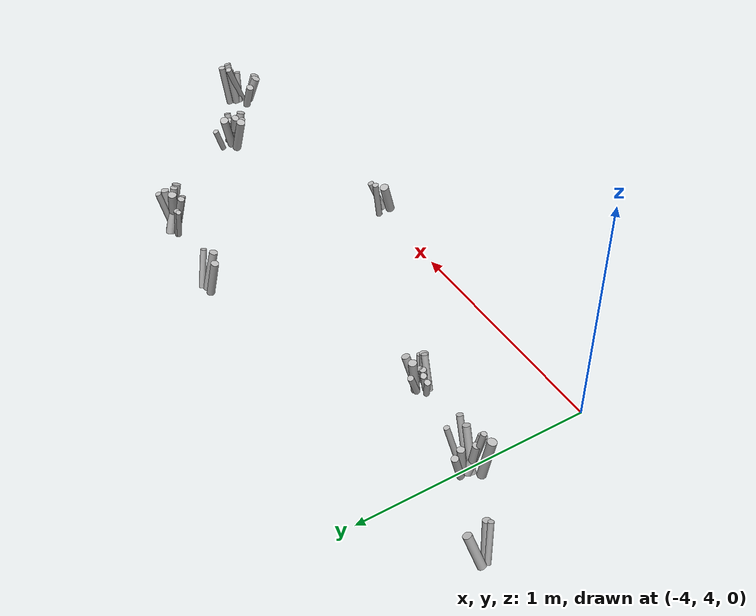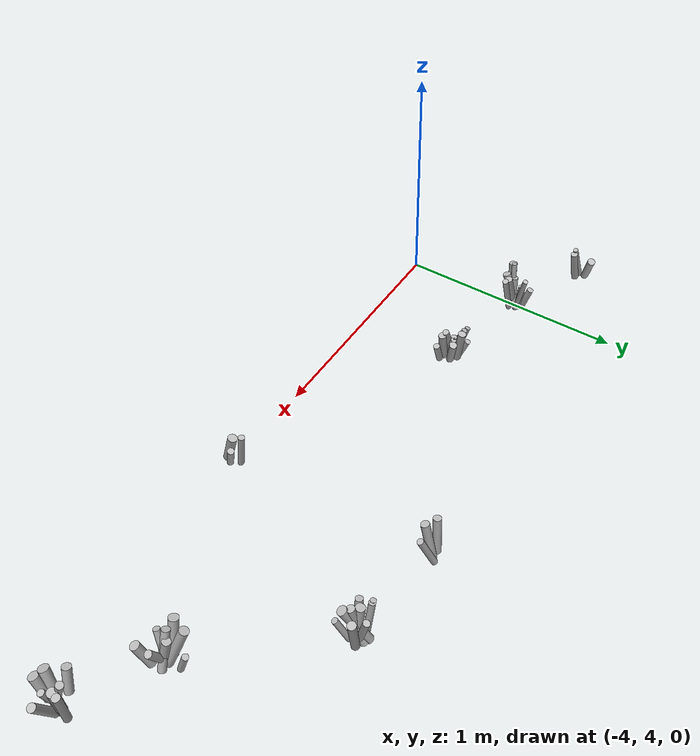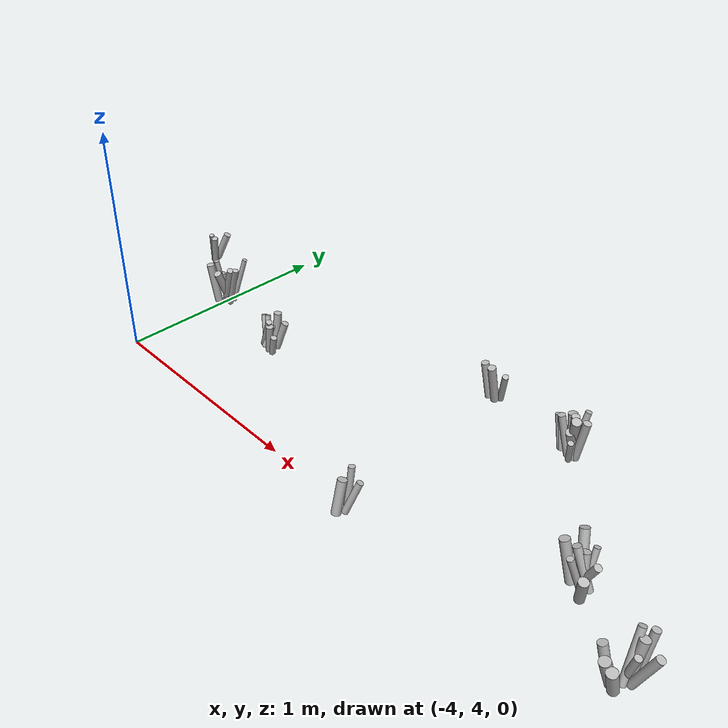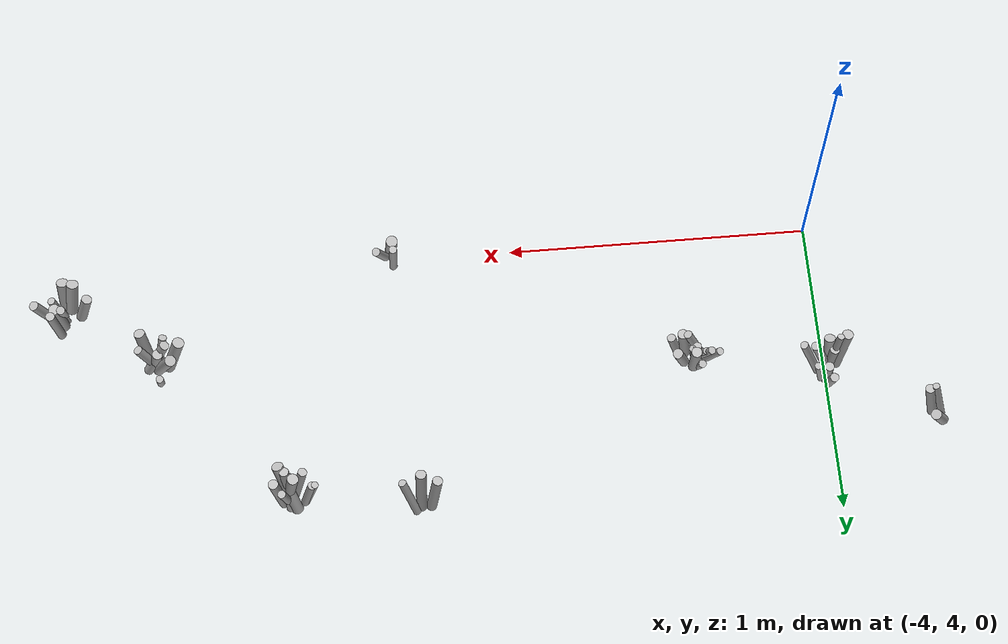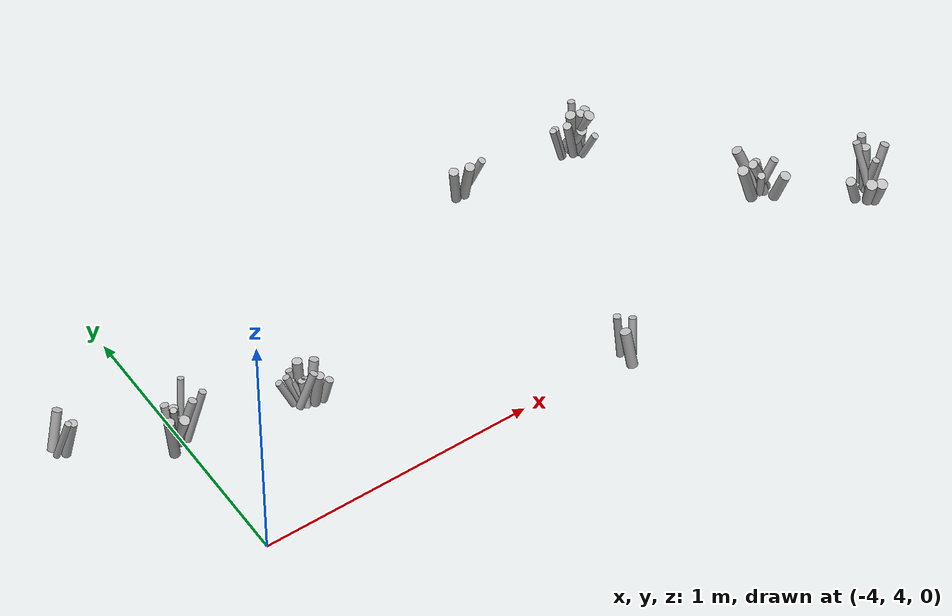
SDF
<sdf version="1.6">
 <world name="default">
  <model name="tussocks">
   <static>true</static>
   <link name="tuft23_0">
    <pose>-3.9995 4.5522 0.0627 0 0.1065 1.3027</pose>
    <visual name="tuft23_0_v">
     <geometry><cylinder><radius>0.0153</radius><length>0.1362</length></cylinder></geometry>
     <material>
      <script>
       <uri>model://bushfire/materials/scripts</uri>
       <uri>model://bushfire/materials/textures</uri>
       <name>Bushfire/Tussock</name>
      </script>
     </material>
    </visual>
   </link>
   <link name="tuft23_1">
    <pose>-3.9465 4.5115 0.1014 0 0.3116 6.2316</pose>
    <visual name="tuft23_1_v">
     <geometry><cylinder><radius>0.0130</radius><length>0.2203</length></cylinder></geometry>
     <material>
      <script>
       <uri>model://bushfire/materials/scripts</uri>
       <uri>model://bushfire/materials/textures</uri>
       <name>Bushfire/Foliage2</name>
      </script>
     </material>
    </visual>
   </link>
   <link name="tuft23_2">
    <pose>-4.0526 4.4830 0.0897 0 0.1355 3.7796</pose>
    <visual name="tuft23_2_v">
     <geometry><cylinder><radius>0.0182</radius><length>0.1951</length></cylinder></geometry>
     <material>
      <script>
       <uri>model://bushfire/materials/scripts</uri>
       <uri>model://bushfire/materials/textures</uri>
       <name>Bushfire/Foliage2</name>
      </script>
     </material>
    </visual>
   </link>
   <link name="tuft23_3">
    <pose>-4.0130 4.5127 0.0696 0 0.1254 3.7039</pose>
    <visual name="tuft23_3_v">
     <geometry><cylinder><radius>0.0158</radius><length>0.1514</length></cylinder></geometry>
     <material>
      <script>
       <uri>model://bushfire/materials/scripts</uri>
       <uri>model://bushfire/materials/textures</uri>
       <name>Bushfire/Tussock</name>
      </script>
     </material>
    </visual>
   </link>
   <link name="tuft23_4">
    <pose>-3.9857 4.5121 0.0930 0 0.3324 6.1719</pose>
    <visual name="tuft23_4_v">
     <geometry><cylinder><radius>0.0152</radius><length>0.2021</length></cylinder></geometry>
     <material>
      <script>
       <uri>model://bushfire/materials/scripts</uri>
       <uri>model://bushfire/materials/textures</uri>
       <name>Bushfire/Foliage2</name>
      </script>
     </material>
    </visual>
   </link>
   <link name="tuft23_5">
    <pose>-3.9671 4.5657 0.1061 0 0.2846 0.8724</pose>
    <visual name="tuft23_5_v">
     <geometry><cylinder><radius>0.0112</radius><length>0.2306</length></cylinder></geometry>
     <material>
      <script>
       <uri>model://bushfire/materials/scripts</uri>
       <uri>model://bushfire/materials/textures</uri>
       <name>Bushfire/Tussock</name>
      </script>
     </material>
    </visual>
   </link>
   <link name="tuft23_6">
    <pose>-4.0113 4.5776 0.0574 0 0.2684 1.5958</pose>
    <visual name="tuft23_6_v">
     <geometry><cylinder><radius>0.0144</radius><length>0.1248</length></cylinder></geometry>
     <material>
      <script>
       <uri>model://bushfire/materials/scripts</uri>
       <uri>model://bushfire/materials/textures</uri>
       <name>Bushfire/Foliage2</name>
      </script>
     </material>
    </visual>
   </link>
   <link name="tuft23_7">
    <pose>-4.0211 4.5047 0.1024 0 0.1667 3.8697</pose>
    <visual name="tuft23_7_v">
     <geometry><cylinder><radius>0.0116</radius><length>0.2226</length></cylinder></geometry>
     <material>
      <script>
       <uri>model://bushfire/materials/scripts</uri>
       <uri>model://bushfire/materials/textures</uri>
       <name>Bushfire/Tussock</name>
      </script>
     </material>
    </visual>
   </link>
   <link name="tuft23_8">
    <pose>-4.0091 4.5029 0.0803 0 0.3526 4.7714</pose>
    <visual name="tuft23_8_v">
     <geometry><cylinder><radius>0.0181</radius><length>0.1746</length></cylinder></geometry>
     <material>
      <script>
       <uri>model://bushfire/materials/scripts</uri>
       <uri>model://bushfire/materials/textures</uri>
       <name>Bushfire/Tussock</name>
      </script>
     </material>
    </visual>
   </link>
   <link name="tuft34_0">
    <pose>-1.8084 4.3270 0.0842 0 0.4013 3.2675</pose>
    <visual name="tuft34_0_v">
     <geometry><cylinder><radius>0.0161</radius><length>0.1830</length></cylinder></geometry>
     <material>
      <script>
       <uri>model://bushfire/materials/scripts</uri>
       <uri>model://bushfire/materials/textures</uri>
       <name>Bushfire/Tussock</name>
      </script>
     </material>
    </visual>
   </link>
   <link name="tuft34_1">
    <pose>-1.8157 4.3982 0.0548 0 0.3081 1.7720</pose>
    <visual name="tuft34_1_v">
     <geometry><cylinder><radius>0.0124</radius><length>0.1192</length></cylinder></geometry>
     <material>
      <script>
       <uri>model://bushfire/materials/scripts</uri>
       <uri>model://bushfire/materials/textures</uri>
       <name>Bushfire/Foliage2</name>
      </script>
     </material>
    </visual>
   </link>
   <link name="tuft34_2">
    <pose>-1.8643 4.3203 0.0831 0 0.2821 3.2621</pose>
    <visual name="tuft34_2_v">
     <geometry><cylinder><radius>0.0194</radius><length>0.1806</length></cylinder></geometry>
     <material>
      <script>
       <uri>model://bushfire/materials/scripts</uri>
       <uri>model://bushfire/materials/textures</uri>
       <name>Bushfire/Foliage2</name>
      </script>
     </material>
    </visual>
   </link>
   <link name="tuft34_3">
    <pose>-1.8350 4.3604 0.0957 0 0.4004 2.3729</pose>
    <visual name="tuft34_3_v">
     <geometry><cylinder><radius>0.0183</radius><length>0.2080</length></cylinder></geometry>
     <material>
      <script>
       <uri>model://bushfire/materials/scripts</uri>
       <uri>model://bushfire/materials/textures</uri>
       <name>Bushfire/Foliage2</name>
      </script>
     </material>
    </visual>
   </link>
   <link name="tuft34_4">
    <pose>-1.8044 4.3307 0.0708 0 0.2371 2.3947</pose>
    <visual name="tuft34_4_v">
     <geometry><cylinder><radius>0.0166</radius><length>0.1540</length></cylinder></geometry>
     <material>
      <script>
       <uri>model://bushfire/materials/scripts</uri>
       <uri>model://bushfire/materials/textures</uri>
       <name>Bushfire/Foliage2</name>
      </script>
     </material>
    </visual>
   </link>
   <link name="tuft34_5">
    <pose>-1.7669 4.2675 0.0597 0 0.2852 5.2315</pose>
    <visual name="tuft34_5_v">
     <geometry><cylinder><radius>0.0186</radius><length>0.1297</length></cylinder></geometry>
     <material>
      <script>
       <uri>model://bushfire/materials/scripts</uri>
       <uri>model://bushfire/materials/textures</uri>
       <name>Bushfire/Tussock</name>
      </script>
     </material>
    </visual>
   </link>
   <link name="tuft34_6">
    <pose>-1.8205 4.3029 0.0703 0 0.3443 4.0598</pose>
    <visual name="tuft34_6_v">
     <geometry><cylinder><radius>0.0130</radius><length>0.1529</length></cylinder></geometry>
     <material>
      <script>
       <uri>model://bushfire/materials/scripts</uri>
       <uri>model://bushfire/materials/textures</uri>
       <name>Bushfire/Tussock</name>
      </script>
     </material>
    </visual>
   </link>
   <link name="tuft34_7">
    <pose>-1.7831 4.3245 0.0696 0 0.3982 6.1003</pose>
    <visual name="tuft34_7_v">
     <geometry><cylinder><radius>0.0147</radius><length>0.1512</length></cylinder></geometry>
     <material>
      <script>
       <uri>model://bushfire/materials/scripts</uri>
       <uri>model://bushfire/materials/textures</uri>
       <name>Bushfire/Foliage2</name>
      </script>
     </material>
    </visual>
   </link>
   <link name="tuft38_0">
    <pose>-2.2183 4.8263 0.1005 0 0.1624 5.0749</pose>
    <visual name="tuft38_0_v">
     <geometry><cylinder><radius>0.0159</radius><length>0.2184</length></cylinder></geometry>
     <material>
      <script>
       <uri>model://bushfire/materials/scripts</uri>
       <uri>model://bushfire/materials/textures</uri>
       <name>Bushfire/Tussock</name>
      </script>
     </material>
    </visual>
   </link>
   <link name="tuft38_1">
    <pose>-2.2483 4.8158 0.0894 0 0.2458 3.5704</pose>
    <visual name="tuft38_1_v">
     <geometry><cylinder><radius>0.0148</radius><length>0.1944</length></cylinder></geometry>
     <material>
      <script>
       <uri>model://bushfire/materials/scripts</uri>
       <uri>model://bushfire/materials/textures</uri>
       <name>Bushfire/Foliage2</name>
      </script>
     </material>
    </visual>
   </link>
   <link name="tuft38_2">
    <pose>-2.2223 4.8295 0.0945 0 0.1591 2.9968</pose>
    <visual name="tuft38_2_v">
     <geometry><cylinder><radius>0.0184</radius><length>0.2053</length></cylinder></geometry>
     <material>
      <script>
       <uri>model://bushfire/materials/scripts</uri>
       <uri>model://bushfire/materials/textures</uri>
       <name>Bushfire/Tussock</name>
      </script>
     </material>
    </visual>
   </link>
   <link name="tuft38_3">
    <pose>-2.1950 4.7823 0.0604 0 0.3640 5.1931</pose>
    <visual name="tuft38_3_v">
     <geometry><cylinder><radius>0.0120</radius><length>0.1314</length></cylinder></geometry>
     <material>
      <script>
       <uri>model://bushfire/materials/scripts</uri>
       <uri>model://bushfire/materials/textures</uri>
       <name>Bushfire/Foliage2</name>
      </script>
     </material>
    </visual>
   </link>
   <link name="tuft38_4">
    <pose>-2.1863 4.8360 0.0870 0 0.1245 0.2062</pose>
    <visual name="tuft38_4_v">
     <geometry><cylinder><radius>0.0166</radius><length>0.1891</length></cylinder></geometry>
     <material>
      <script>
       <uri>model://bushfire/materials/scripts</uri>
       <uri>model://bushfire/materials/textures</uri>
       <name>Bushfire/Tussock</name>
      </script>
     </material>
    </visual>
   </link>
   <link name="tuft38_5">
    <pose>-2.2802 4.8389 0.0727 0 0.1999 2.9817</pose>
    <visual name="tuft38_5_v">
     <geometry><cylinder><radius>0.0132</radius><length>0.1580</length></cylinder></geometry>
     <material>
      <script>
       <uri>model://bushfire/materials/scripts</uri>
       <uri>model://bushfire/materials/textures</uri>
       <name>Bushfire/Foliage2</name>
      </script>
     </material>
    </visual>
   </link>
   <link name="tuft38_7">
    <pose>-2.2871 4.8371 0.0725 0 0.2315 3.0239</pose>
    <visual name="tuft38_7_v">
     <geometry><cylinder><radius>0.0116</radius><length>0.1576</length></cylinder></geometry>
     <material>
      <script>
       <uri>model://bushfire/materials/scripts</uri>
       <uri>model://bushfire/materials/textures</uri>
       <name>Bushfire/Tussock</name>
      </script>
     </material>
    </visual>
   </link>
   <link name="tuft38_8">
    <pose>-2.2190 4.8260 0.0673 0 0.3982 4.8301</pose>
    <visual name="tuft38_8_v">
     <geometry><cylinder><radius>0.0181</radius><length>0.1464</length></cylinder></geometry>
     <material>
      <script>
       <uri>model://bushfire/materials/scripts</uri>
       <uri>model://bushfire/materials/textures</uri>
       <name>Bushfire/Foliage2</name>
      </script>
     </material>
    </visual>
   </link>
   <link name="tuft38_9">
    <pose>-2.2166 4.8250 0.1027 0 0.4063 5.2998</pose>
    <visual name="tuft38_9_v">
     <geometry><cylinder><radius>0.0188</radius><length>0.2233</length></cylinder></geometry>
     <material>
      <script>
       <uri>model://bushfire/materials/scripts</uri>
       <uri>model://bushfire/materials/textures</uri>
       <name>Bushfire/Foliage2</name>
      </script>
     </material>
    </visual>
   </link>
   <link name="tuft38_10">
    <pose>-2.2095 4.8570 0.0958 0 0.2393 1.2319</pose>
    <visual name="tuft38_10_v">
     <geometry><cylinder><radius>0.0130</radius><length>0.2084</length></cylinder></geometry>
     <material>
      <script>
       <uri>model://bushfire/materials/scripts</uri>
       <uri>model://bushfire/materials/textures</uri>
       <name>Bushfire/Foliage2</name>
      </script>
     </material>
    </visual>
   </link>
   <link name="tuft41_3">
    <pose>-2.6418 4.8629 0.0864 0 0.2203 4.6191</pose>
    <visual name="tuft41_3_v">
     <geometry><cylinder><radius>0.0174</radius><length>0.1878</length></cylinder></geometry>
     <material>
      <script>
       <uri>model://bushfire/materials/scripts</uri>
       <uri>model://bushfire/materials/textures</uri>
       <name>Bushfire/Foliage2</name>
      </script>
     </material>
    </visual>
   </link>
   <link name="tuft41_7">
    <pose>-2.6037 4.8795 0.0779 0 0.3522 5.5049</pose>
    <visual name="tuft41_7_v">
     <geometry><cylinder><radius>0.0132</radius><length>0.1694</length></cylinder></geometry>
     <material>
      <script>
       <uri>model://bushfire/materials/scripts</uri>
       <uri>model://bushfire/materials/textures</uri>
       <name>Bushfire/Tussock</name>
      </script>
     </material>
    </visual>
   </link>
   <link name="tuft41_10">
    <pose>-2.6835 4.8738 0.0803 0 0.1787 3.8380</pose>
    <visual name="tuft41_10_v">
     <geometry><cylinder><radius>0.0166</radius><length>0.1746</length></cylinder></geometry>
     <material>
      <script>
       <uri>model://bushfire/materials/scripts</uri>
       <uri>model://bushfire/materials/textures</uri>
       <name>Bushfire/Foliage2</name>
      </script>
     </material>
    </visual>
   </link>
   <link name="tuft46_0">
    <pose>-3.5273 4.4597 0.0638 0 0.3120 0.6908</pose>
    <visual name="tuft46_0_v">
     <geometry><cylinder><radius>0.0165</radius><length>0.1388</length></cylinder></geometry>
     <material>
      <script>
       <uri>model://bushfire/materials/scripts</uri>
       <uri>model://bushfire/materials/textures</uri>
       <name>Bushfire/Tussock</name>
      </script>
     </material>
    </visual>
   </link>
   <link name="tuft46_1">
    <pose>-3.5959 4.4411 0.0501 0 0.4069 2.2219</pose>
    <visual name="tuft46_1_v">
     <geometry><cylinder><radius>0.0117</radius><length>0.1089</length></cylinder></geometry>
     <material>
      <script>
       <uri>model://bushfire/materials/scripts</uri>
       <uri>model://bushfire/materials/textures</uri>
       <name>Bushfire/Tussock</name>
      </script>
     </material>
    </visual>
   </link>
   <link name="tuft46_2">
    <pose>-3.5799 4.4314 0.0488 0 0.1526 1.7043</pose>
    <visual name="tuft46_2_v">
     <geometry><cylinder><radius>0.0135</radius><length>0.1060</length></cylinder></geometry>
     <material>
      <script>
       <uri>model://bushfire/materials/scripts</uri>
       <uri>model://bushfire/materials/textures</uri>
       <name>Bushfire/Tussock</name>
      </script>
     </material>
    </visual>
   </link>
   <link name="tuft46_3">
    <pose>-3.5767 4.4175 0.0714 0 0.3597 6.1421</pose>
    <visual name="tuft46_3_v">
     <geometry><cylinder><radius>0.0138</radius><length>0.1552</length></cylinder></geometry>
     <material>
      <script>
       <uri>model://bushfire/materials/scripts</uri>
       <uri>model://bushfire/materials/textures</uri>
       <name>Bushfire/Tussock</name>
      </script>
     </material>
    </visual>
   </link>
   <link name="tuft46_4">
    <pose>-3.5432 4.4077 0.0631 0 0.1257 6.0041</pose>
    <visual name="tuft46_4_v">
     <geometry><cylinder><radius>0.0171</radius><length>0.1372</length></cylinder></geometry>
     <material>
      <script>
       <uri>model://bushfire/materials/scripts</uri>
       <uri>model://bushfire/materials/textures</uri>
       <name>Bushfire/Foliage2</name>
      </script>
     </material>
    </visual>
   </link>
   <link name="tuft46_5">
    <pose>-3.5717 4.4730 0.0728 0 0.1178 1.4547</pose>
    <visual name="tuft46_5_v">
     <geometry><cylinder><radius>0.0174</radius><length>0.1584</length></cylinder></geometry>
     <material>
      <script>
       <uri>model://bushfire/materials/scripts</uri>
       <uri>model://bushfire/materials/textures</uri>
       <name>Bushfire/Tussock</name>
      </script>
     </material>
    </visual>
   </link>
   <link name="tuft46_6">
    <pose>-3.5121 4.4015 0.0451 0 0.2543 6.0424</pose>
    <visual name="tuft46_6_v">
     <geometry><cylinder><radius>0.0142</radius><length>0.0980</length></cylinder></geometry>
     <material>
      <script>
       <uri>model://bushfire/materials/scripts</uri>
       <uri>model://bushfire/materials/textures</uri>
       <name>Bushfire/Tussock</name>
      </script>
     </material>
    </visual>
   </link>
   <link name="tuft46_7">
    <pose>-3.6073 4.4486 0.0603 0 0.3862 2.3282</pose>
    <visual name="tuft46_7_v">
     <geometry><cylinder><radius>0.0125</radius><length>0.1312</length></cylinder></geometry>
     <material>
      <script>
       <uri>model://bushfire/materials/scripts</uri>
       <uri>model://bushfire/materials/textures</uri>
       <name>Bushfire/Tussock</name>
      </script>
     </material>
    </visual>
   </link>
   <link name="tuft46_8">
    <pose>-3.5883 4.4841 0.0484 0 0.3493 1.7228</pose>
    <visual name="tuft46_8_v">
     <geometry><cylinder><radius>0.0125</radius><length>0.1052</length></cylinder></geometry>
     <material>
      <script>
       <uri>model://bushfire/materials/scripts</uri>
       <uri>model://bushfire/materials/textures</uri>
       <name>Bushfire/Tussock</name>
      </script>
     </material>
    </visual>
   </link>
   <link name="tuft46_9">
    <pose>-3.5741 4.4268 0.0493 0 0.4075 1.1568</pose>
    <visual name="tuft46_9_v">
     <geometry><cylinder><radius>0.0117</radius><length>0.1071</length></cylinder></geometry>
     <material>
      <script>
       <uri>model://bushfire/materials/scripts</uri>
       <uri>model://bushfire/materials/textures</uri>
       <name>Bushfire/Foliage2</name>
      </script>
     </material>
    </visual>
   </link>
   <link name="tuft46_10">
    <pose>-3.6327 4.4542 0.0554 0 0.4010 2.5534</pose>
    <visual name="tuft46_10_v">
     <geometry><cylinder><radius>0.0124</radius><length>0.1204</length></cylinder></geometry>
     <material>
      <script>
       <uri>model://bushfire/materials/scripts</uri>
       <uri>model://bushfire/materials/textures</uri>
       <name>Bushfire/Foliage2</name>
      </script>
     </material>
    </visual>
   </link>
   <link name="tuft138_0">
    <pose>-1.4901 4.1253 0.0694 0 0.2147 5.9666</pose>
    <visual name="tuft138_0_v">
     <geometry><cylinder><radius>0.0130</radius><length>0.1509</length></cylinder></geometry>
     <material>
      <script>
       <uri>model://bushfire/materials/scripts</uri>
       <uri>model://bushfire/materials/textures</uri>
       <name>Bushfire/Foliage2</name>
      </script>
     </material>
    </visual>
   </link>
   <link name="tuft138_2">
    <pose>-1.4500 4.1390 0.0828 0 0.3357 0.1962</pose>
    <visual name="tuft138_2_v">
     <geometry><cylinder><radius>0.0159</radius><length>0.1801</length></cylinder></geometry>
     <material>
      <script>
       <uri>model://bushfire/materials/scripts</uri>
       <uri>model://bushfire/materials/textures</uri>
       <name>Bushfire/Foliage2</name>
      </script>
     </material>
    </visual>
   </link>
   <link name="tuft138_3">
    <pose>-1.4923 4.1557 0.0842 0 0.1328 1.2607</pose>
    <visual name="tuft138_3_v">
     <geometry><cylinder><radius>0.0185</radius><length>0.1830</length></cylinder></geometry>
     <material>
      <script>
       <uri>model://bushfire/materials/scripts</uri>
       <uri>model://bushfire/materials/textures</uri>
       <name>Bushfire/Foliage2</name>
      </script>
     </material>
    </visual>
   </link>
   <link name="tuft138_4">
    <pose>-1.5313 4.0726 0.0600 0 0.3232 4.2168</pose>
    <visual name="tuft138_4_v">
     <geometry><cylinder><radius>0.0199</radius><length>0.1305</length></cylinder></geometry>
     <material>
      <script>
       <uri>model://bushfire/materials/scripts</uri>
       <uri>model://bushfire/materials/textures</uri>
       <name>Bushfire/Foliage2</name>
      </script>
     </material>
    </visual>
   </link>
   <link name="tuft138_5">
    <pose>-1.5052 4.0602 0.0562 0 0.2960 4.6501</pose>
    <visual name="tuft138_5_v">
     <geometry><cylinder><radius>0.0196</radius><length>0.1221</length></cylinder></geometry>
     <material>
      <script>
       <uri>model://bushfire/materials/scripts</uri>
       <uri>model://bushfire/materials/textures</uri>
       <name>Bushfire/Foliage2</name>
      </script>
     </material>
    </visual>
   </link>
   <link name="tuft138_6">
    <pose>-1.4826 4.1890 0.0952 0 0.1322 1.2763</pose>
    <visual name="tuft138_6_v">
     <geometry><cylinder><radius>0.0148</radius><length>0.2069</length></cylinder></geometry>
     <material>
      <script>
       <uri>model://bushfire/materials/scripts</uri>
       <uri>model://bushfire/materials/textures</uri>
       <name>Bushfire/Tussock</name>
      </script>
     </material>
    </visual>
   </link>
   <link name="tuft138_7">
    <pose>-1.5053 4.1475 0.0989 0 0.3504 1.8002</pose>
    <visual name="tuft138_7_v">
     <geometry><cylinder><radius>0.0140</radius><length>0.2149</length></cylinder></geometry>
     <material>
      <script>
       <uri>model://bushfire/materials/scripts</uri>
       <uri>model://bushfire/materials/textures</uri>
       <name>Bushfire/Tussock</name>
      </script>
     </material>
    </visual>
   </link>
   <link name="tuft138_8">
    <pose>-1.5703 4.1140 0.0563 0 0.2842 3.3529</pose>
    <visual name="tuft138_8_v">
     <geometry><cylinder><radius>0.0172</radius><length>0.1223</length></cylinder></geometry>
     <material>
      <script>
       <uri>model://bushfire/materials/scripts</uri>
       <uri>model://bushfire/materials/textures</uri>
       <name>Bushfire/Foliage2</name>
      </script>
     </material>
    </visual>
   </link>
   <link name="tuft144_0">
    <pose>-2.6033 3.9723 0.0667 0 0.2674 1.7126</pose>
    <visual name="tuft144_0_v">
     <geometry><cylinder><radius>0.0191</radius><length>0.1449</length></cylinder></geometry>
     <material>
      <script>
       <uri>model://bushfire/materials/scripts</uri>
       <uri>model://bushfire/materials/textures</uri>
       <name>Bushfire/Tussock</name>
      </script>
     </material>
    </visual>
   </link>
   <link name="tuft144_1">
    <pose>-2.6069 4.0260 0.0817 0 0.1375 1.6577</pose>
    <visual name="tuft144_1_v">
     <geometry><cylinder><radius>0.0132</radius><length>0.1776</length></cylinder></geometry>
     <material>
      <script>
       <uri>model://bushfire/materials/scripts</uri>
       <uri>model://bushfire/materials/textures</uri>
       <name>Bushfire/Foliage2</name>
      </script>
     </material>
    </visual>
   </link>
   <link name="tuft144_3">
    <pose>-2.5669 4.0030 0.0682 0 0.3837 0.9885</pose>
    <visual name="tuft144_3_v">
     <geometry><cylinder><radius>0.0137</radius><length>0.1483</length></cylinder></geometry>
     <material>
      <script>
       <uri>model://bushfire/materials/scripts</uri>
       <uri>model://bushfire/materials/textures</uri>
       <name>Bushfire/Tussock</name>
      </script>
     </material>
    </visual>
   </link>
   <link name="tuft180_3">
    <pose>-4.3414 4.7408 0.0696 0 0.4151 0.6072</pose>
    <visual name="tuft180_3_v">
     <geometry><cylinder><radius>0.0172</radius><length>0.1513</length></cylinder></geometry>
     <material>
      <script>
       <uri>model://bushfire/materials/scripts</uri>
       <uri>model://bushfire/materials/textures</uri>
       <name>Bushfire/Tussock</name>
      </script>
     </material>
    </visual>
   </link>
   <link name="tuft180_6">
    <pose>-4.3457 4.6840 0.0801 0 0.2826 5.6719</pose>
    <visual name="tuft180_6_v">
     <geometry><cylinder><radius>0.0114</radius><length>0.1742</length></cylinder></geometry>
     <material>
      <script>
       <uri>model://bushfire/materials/scripts</uri>
       <uri>model://bushfire/materials/textures</uri>
       <name>Bushfire/Tussock</name>
      </script>
     </material>
    </visual>
   </link>
   <link name="tuft180_8">
    <pose>-4.3221 4.6800 0.0737 0 0.1993 5.8195</pose>
    <visual name="tuft180_8_v">
     <geometry><cylinder><radius>0.0160</radius><length>0.1603</length></cylinder></geometry>
     <material>
      <script>
       <uri>model://bushfire/materials/scripts</uri>
       <uri>model://bushfire/materials/textures</uri>
       <name>Bushfire/Foliage2</name>
      </script>
     </material>
    </visual>
   </link>
  </model>
 </world>
</sdf>
